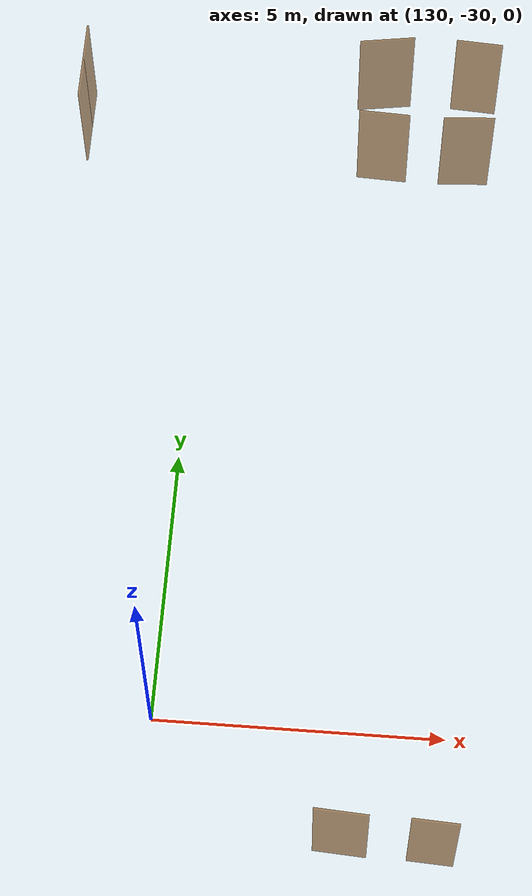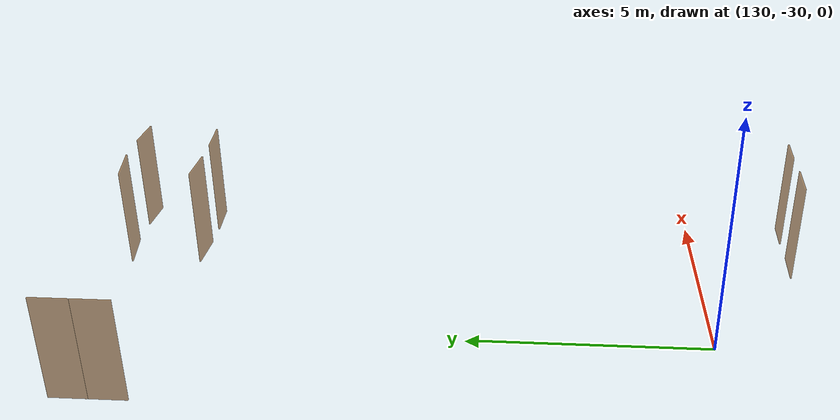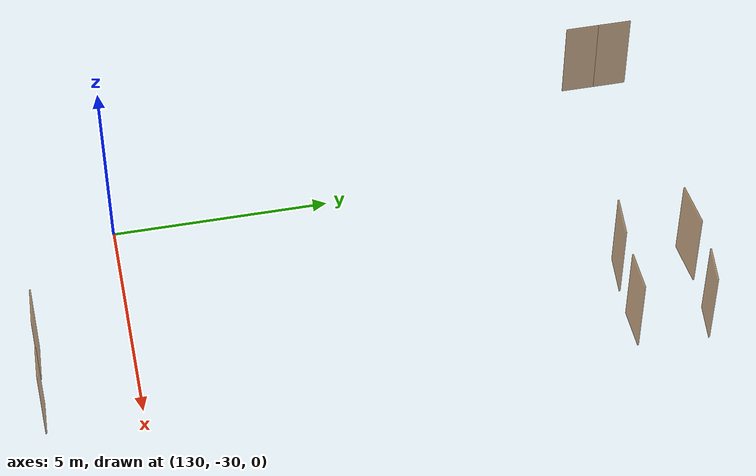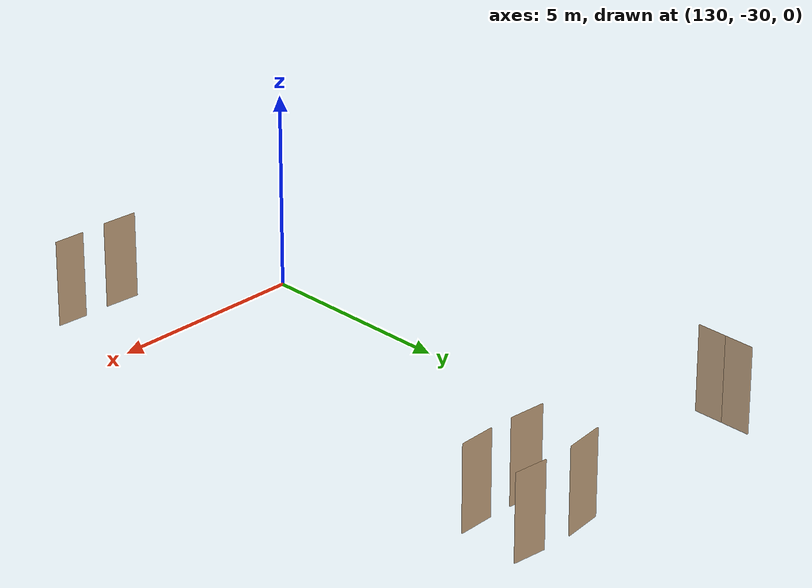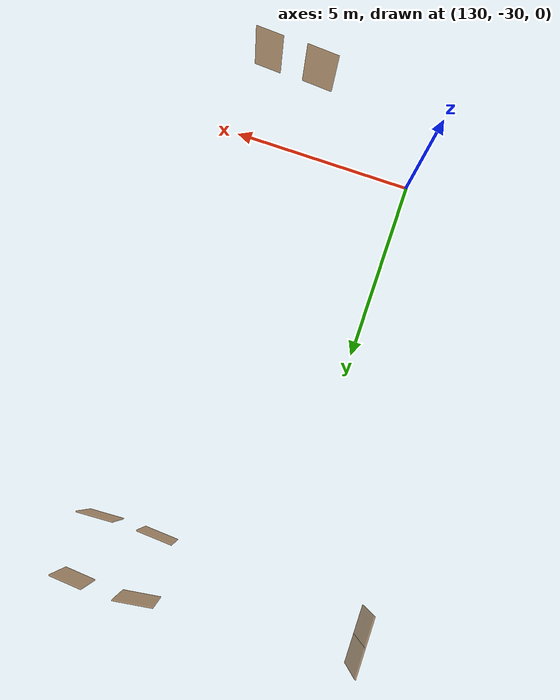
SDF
<sdf version="1.7">
 <world name="sim_world">
  <model name="puerta32">
   <pose>133.32726071718577 -32.10115323608731 0.0 0 0 -0.06548456715027876</pose>
   <link name="right">
    <pose>0 0 1.11 0 0 0</pose>
    <visual name="right_visual">
     <geometry><box><size>0.8991385499192738 0.03 2.2</size></box></geometry>
     <material>
      <ambient>0.5 0.25 0 0.6</ambient>
      <diffuse>0.5 0.25 0 0.6</diffuse>
      <pbr><metal><metalness>0.0</metalness></metal></pbr>
     </material>
    </visual>
    <collision name="right_collision">
     <geometry><box><size>0.8991385499192738 0.03 2.2</size></box></geometry>
     <surface><contact><collide_bitmask>0x02</collide_bitmask></contact></surface>
    </collision>
    <inertial>
     <mass>50.0</mass>
     <inertia><ixx>20.17041666666667</ixx><iyy>23.5352088831289</iyy><izz>3.372292216462227</izz></inertia>
    </inertial>
   </link>
   <joint name="right_joint" type="revolute">
    <parent>world</parent>
    <child>right</child>
    <axis><xyz>0 0 -1</xyz><limit><lower>0</lower><upper>1.57</upper></limit></axis>
    <pose>0.4545692749596369 0 0 0 0 0</pose>
   </joint>
   <plugin name="register_component" filename="libregister_component.so">
    <component name="Door">
     <v_max_door>0.5</v_max_door>
     <a_max_door>0.3</a_max_door>
     <a_nom_door>0.15</a_nom_door>
     <dx_min_door>0.01</dx_min_door>
     <f_max_door>500.0</f_max_door>
     <ros_interface>true</ros_interface>
     <door name="puerta32" type="SwingDoor" left_joint_name="empty_joint" right_joint_name="right_joint"/>
    </component>
   </plugin>
  </model>
  <model name="puerta33">
   <pose>134.82939174264442 -32.15321925790666 0.0 0 0 3.08502110808974</pose>
   <link name="right">
    <pose>0 0 1.11 0 0 0</pose>
    <visual name="right_visual">
     <geometry><box><size>0.7795110300568253 0.03 2.2</size></box></geometry>
     <material>
      <ambient>0.5 0.25 0 0.6</ambient>
      <diffuse>0.5 0.25 0 0.6</diffuse>
      <pbr><metal><metalness>0.0</metalness></metal></pbr>
     </material>
    </visual>
    <collision name="right_collision">
     <geometry><box><size>0.7795110300568253 0.03 2.2</size></box></geometry>
     <surface><contact><collide_bitmask>0x02</collide_bitmask></contact></surface>
    </collision>
    <inertial>
     <mass>50.0</mass>
     <inertia><ixx>20.17041666666667</ixx><iyy>22.69848935825106</iyy><izz>2.535572691584387</izz></inertia>
    </inertial>
   </link>
   <joint name="right_joint" type="revolute">
    <parent>world</parent>
    <child>right</child>
    <axis><xyz>0 0 1</xyz><limit><lower>0</lower><upper>1.57</upper></limit></axis>
    <pose>0.39475551502841266 0 0 0 0 0</pose>
   </joint>
   <plugin name="register_component" filename="libregister_component.so">
    <component name="Door">
     <v_max_door>0.5</v_max_door>
     <a_max_door>0.3</a_max_door>
     <a_nom_door>0.15</a_nom_door>
     <dx_min_door>0.01</dx_min_door>
     <f_max_door>500.0</f_max_door>
     <ros_interface>true</ros_interface>
     <door name="puerta33" type="SwingDoor" left_joint_name="empty_joint" right_joint_name="right_joint"/>
    </component>
   </plugin>
  </model>
  <model name="puerta65">
   <pose>134.94906996411123 -17.15338755211861 0.0 0 0 3.0730107524832633</pose>
   <link name="right">
    <pose>0 0 1.11 0 0 0</pose>
    <visual name="right_visual">
     <geometry><box><size>0.8544558665927899 0.03 2.2</size></box></geometry>
     <material>
      <ambient>0.5 0.25 0 0.6</ambient>
      <diffuse>0.5 0.25 0 0.6</diffuse>
      <pbr><metal><metalness>0.0</metalness></metal></pbr>
     </material>
    </visual>
    <collision name="right_collision">
     <geometry><box><size>0.8544558665927899 0.03 2.2</size></box></geometry>
     <surface><contact><collide_bitmask>0x02</collide_bitmask></contact></surface>
    </collision>
    <inertial>
     <mass>50.0</mass>
     <inertia><ixx>20.17041666666667</ixx><iyy>23.20872844981182</iyy><izz>3.0458117831451488</izz></inertia>
    </inertial>
   </link>
   <joint name="right_joint" type="revolute">
    <parent>world</parent>
    <child>right</child>
    <axis><xyz>0 0 1</xyz><limit><lower>0</lower><upper>1.57</upper></limit></axis>
    <pose>0.432227933296395 0 0 0 0 0</pose>
   </joint>
   <plugin name="register_component" filename="libregister_component.so">
    <component name="Door">
     <v_max_door>0.5</v_max_door>
     <a_max_door>0.3</a_max_door>
     <a_nom_door>0.15</a_nom_door>
     <dx_min_door>0.01</dx_min_door>
     <f_max_door>500.0</f_max_door>
     <ros_interface>true</ros_interface>
     <door name="puerta65" type="SwingDoor" left_joint_name="empty_joint" right_joint_name="right_joint"/>
    </component>
   </plugin>
  </model>
  <model name="puerta66">
   <pose>134.82272308449626 -18.834983317836233 0.0 0 0 -3.084301946349943</pose>
   <link name="right">
    <pose>0 0 1.11 0 0 0</pose>
    <visual name="right_visual">
     <geometry><box><size>0.9275906778476251 0.03 2.2</size></box></geometry>
     <material>
      <ambient>0.5 0.25 0 0.6</ambient>
      <diffuse>0.5 0.25 0 0.6</diffuse>
      <pbr><metal><metalness>0.0</metalness></metal></pbr>
     </material>
    </visual>
    <collision name="right_collision">
     <geometry><box><size>0.9275906778476251 0.03 2.2</size></box></geometry>
     <surface><contact><collide_bitmask>0x02</collide_bitmask></contact></surface>
    </collision>
    <inertial>
     <mass>50.0</mass>
     <inertia><ixx>20.17041666666667</ixx><iyy>23.751768606790908</iyy><izz>3.588851940124236</izz></inertia>
    </inertial>
   </link>
   <joint name="right_joint" type="revolute">
    <parent>world</parent>
    <child>right</child>
    <axis><xyz>0 0 -1</xyz><limit><lower>0</lower><upper>1.57</upper></limit></axis>
    <pose>0.46879533892381253 0 0 0 0 0</pose>
   </joint>
   <plugin name="register_component" filename="libregister_component.so">
    <component name="Door">
     <v_max_door>0.5</v_max_door>
     <a_max_door>0.3</a_max_door>
     <a_nom_door>0.15</a_nom_door>
     <dx_min_door>0.01</dx_min_door>
     <f_max_door>500.0</f_max_door>
     <ros_interface>true</ros_interface>
     <door name="puerta66" type="SwingDoor" left_joint_name="empty_joint" right_joint_name="right_joint"/>
    </component>
   </plugin>
  </model>
  <model name="puerta67">
   <pose>133.27889716802912 -18.837907429768713 0.0 0 0 -0.05088548593366195</pose>
   <link name="right">
    <pose>0 0 1.11 0 0 0</pose>
    <visual name="right_visual">
     <geometry><box><size>0.9305094536106847 0.03 2.2</size></box></geometry>
     <material>
      <ambient>0.5 0.25 0 0.6</ambient>
      <diffuse>0.5 0.25 0 0.6</diffuse>
      <pbr><metal><metalness>0.0</metalness></metal></pbr>
     </material>
    </visual>
    <collision name="right_collision">
     <geometry><box><size>0.9305094536106847 0.03 2.2</size></box></geometry>
     <surface><contact><collide_bitmask>0x02</collide_bitmask></contact></surface>
    </collision>
    <inertial>
     <mass>50.0</mass>
     <inertia><ixx>20.17041666666667</ixx><iyy>23.774366013578568</iyy><izz>3.611449346911896</izz></inertia>
    </inertial>
   </link>
   <joint name="right_joint" type="revolute">
    <parent>world</parent>
    <child>right</child>
    <axis><xyz>0 0 1</xyz><limit><lower>0</lower><upper>1.57</upper></limit></axis>
    <pose>0.47025472680534236 0 0 0 0 0</pose>
   </joint>
   <plugin name="register_component" filename="libregister_component.so">
    <component name="Door">
     <v_max_door>0.5</v_max_door>
     <a_max_door>0.3</a_max_door>
     <a_nom_door>0.15</a_nom_door>
     <dx_min_door>0.01</dx_min_door>
     <f_max_door>500.0</f_max_door>
     <ros_interface>true</ros_interface>
     <door name="puerta67" type="SwingDoor" left_joint_name="empty_joint" right_joint_name="right_joint"/>
    </component>
   </plugin>
  </model>
  <model name="puerta68">
   <pose>133.2409678600128 -17.20086755666255 0.0 0 0 0.15101710733818446</pose>
   <link name="right">
    <pose>0 0 1.11 0 0 0</pose>
    <visual name="right_visual">
     <geometry><box><size>1.0149650157347112 0.03 2.2</size></box></geometry>
     <material>
      <ambient>0.5 0.25 0 0.6</ambient>
      <diffuse>0.5 0.25 0 0.6</diffuse>
      <pbr><metal><metalness>0.0</metalness></metal></pbr>
     </material>
    </visual>
    <collision name="right_collision">
     <geometry><box><size>1.0149650157347112 0.03 2.2</size></box></geometry>
     <surface><contact><collide_bitmask>0x02</collide_bitmask></contact></surface>
    </collision>
    <inertial>
     <mass>50.0</mass>
     <inertia><ixx>20.17041666666667</ixx><iyy>24.458974929855682</iyy><izz>4.2960582631890105</izz></inertia>
    </inertial>
   </link>
   <joint name="right_joint" type="revolute">
    <parent>world</parent>
    <child>right</child>
    <axis><xyz>0 0 -1</xyz><limit><lower>0</lower><upper>1.57</upper></limit></axis>
    <pose>0.5124825078673556 0 0 0 0 0</pose>
   </joint>
   <plugin name="register_component" filename="libregister_component.so">
    <component name="Door">
     <v_max_door>0.5</v_max_door>
     <a_max_door>0.3</a_max_door>
     <a_nom_door>0.15</a_nom_door>
     <dx_min_door>0.01</dx_min_door>
     <f_max_door>500.0</f_max_door>
     <ros_interface>true</ros_interface>
     <door name="puerta68" type="SwingDoor" left_joint_name="empty_joint" right_joint_name="right_joint"/>
    </component>
   </plugin>
  </model>
  <model name="puerta69">
   <pose>127.65784945241266 -18.052015533555753 0.0 0 0 1.5707963267948966</pose>
   <link name="right">
    <pose>0.38702409552379446 0 1.11 0 0 0</pose>
    <visual name="right_visual">
     <geometry><box><size>0.7640481910475889 0.03 2.2</size></box></geometry>
     <material>
      <ambient>0.5 0.25 0 0.6</ambient>
      <diffuse>0.5 0.25 0 0.6</diffuse>
      <pbr><metal><metalness>0.0</metalness></metal></pbr>
     </material>
    </visual>
    <collision name="right_collision">
     <geometry><box><size>0.7640481910475889 0.03 2.2</size></box></geometry>
     <surface><contact><collide_bitmask>0x02</collide_bitmask></contact></surface>
    </collision>
    <inertial>
     <mass>50.0</mass>
     <inertia><ixx>20.17041666666667</ixx><iyy>22.599040159346227</iyy><izz>2.436123492679554</izz></inertia>
    </inertial>
   </link>
   <joint name="right_joint" type="revolute">
    <parent>world</parent>
    <child>right</child>
    <axis><xyz>0 0 -1</xyz><limit><lower>0</lower><upper>1.57</upper></limit></axis>
    <pose>0.38702409552379446 0 0 0 0 0</pose>
   </joint>
   <link name="left">
    <pose>-0.38702409552379446 0 1.11 0 0 0</pose>
    <visual name="left_visual">
     <geometry><box><size>0.7640481910475889 0.03 2.2</size></box></geometry>
     <material>
      <ambient>0.5 0.25 0 0.6</ambient>
      <diffuse>0.5 0.25 0 0.6</diffuse>
      <pbr><metal><metalness>0.0</metalness></metal></pbr>
     </material>
    </visual>
    <collision name="left_collision">
     <geometry><box><size>0.7640481910475889 0.03 2.2</size></box></geometry>
     <surface><contact><collide_bitmask>0x02</collide_bitmask></contact></surface>
    </collision>
    <inertial>
     <mass>50.0</mass>
     <inertia><ixx>20.17041666666667</ixx><iyy>22.599040159346227</iyy><izz>2.436123492679554</izz></inertia>
    </inertial>
   </link>
   <joint name="left_joint" type="revolute">
    <parent>world</parent>
    <child>left</child>
    <axis><xyz>0 0 -1</xyz><limit><lower>-1.57</lower><upper>0</upper></limit></axis>
    <pose>-0.38702409552379446 0 0 0 0 0</pose>
   </joint>
   <plugin name="register_component" filename="libregister_component.so">
    <component name="Door">
     <v_max_door>0.5</v_max_door>
     <a_max_door>0.3</a_max_door>
     <a_nom_door>0.15</a_nom_door>
     <dx_min_door>0.01</dx_min_door>
     <f_max_door>500.0</f_max_door>
     <ros_interface>true</ros_interface>
     <door name="puerta69" type="DoubleSwingDoor" left_joint_name="left_joint" right_joint_name="right_joint"/>
    </component>
   </plugin>
  </model>
 </world>
</sdf>
